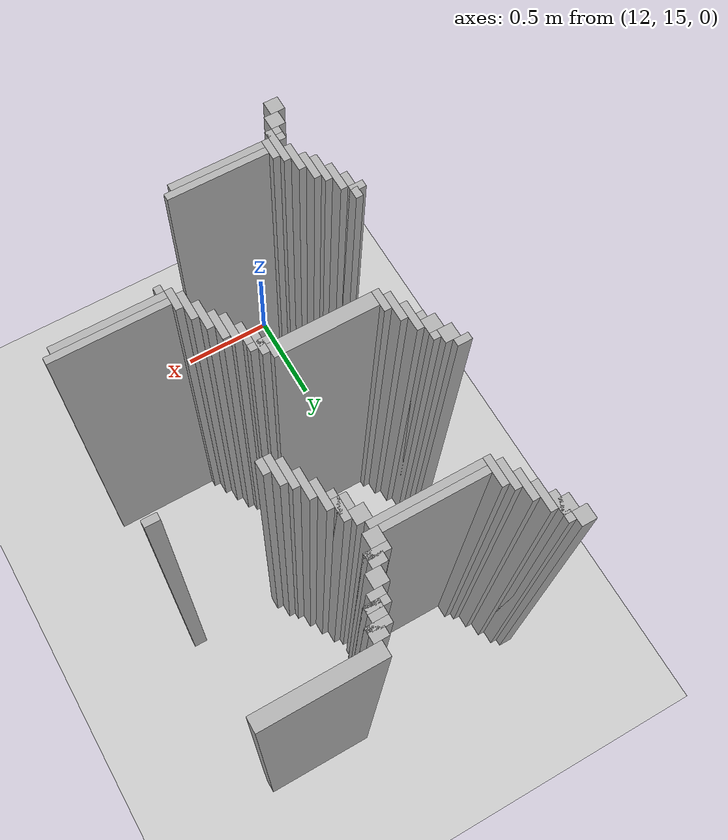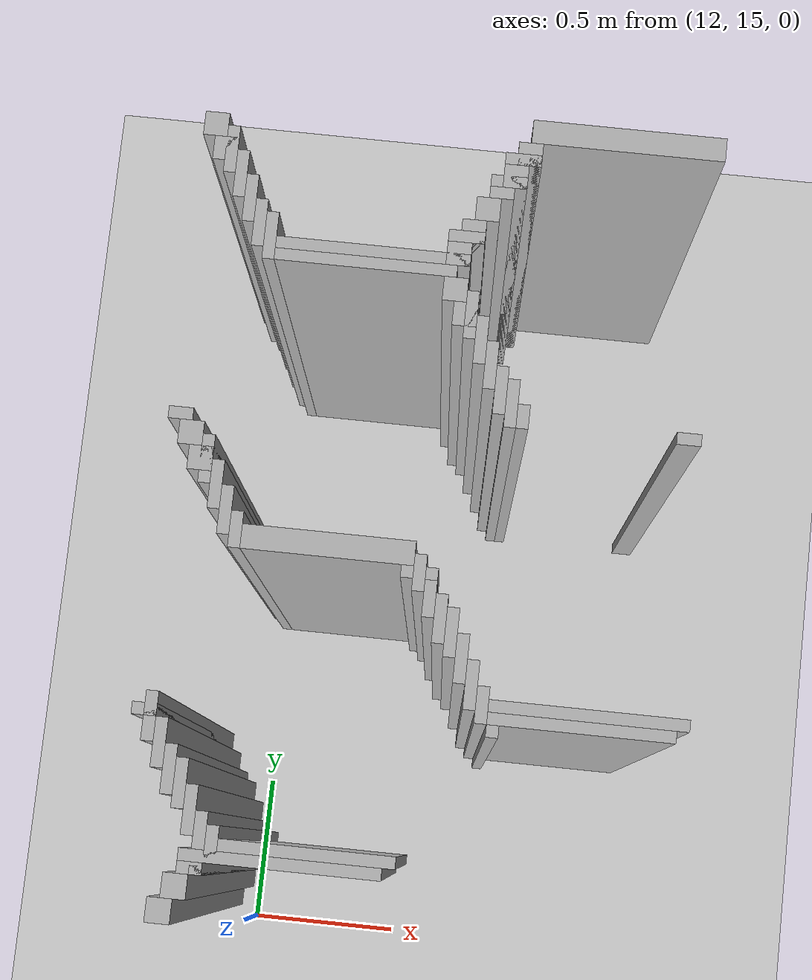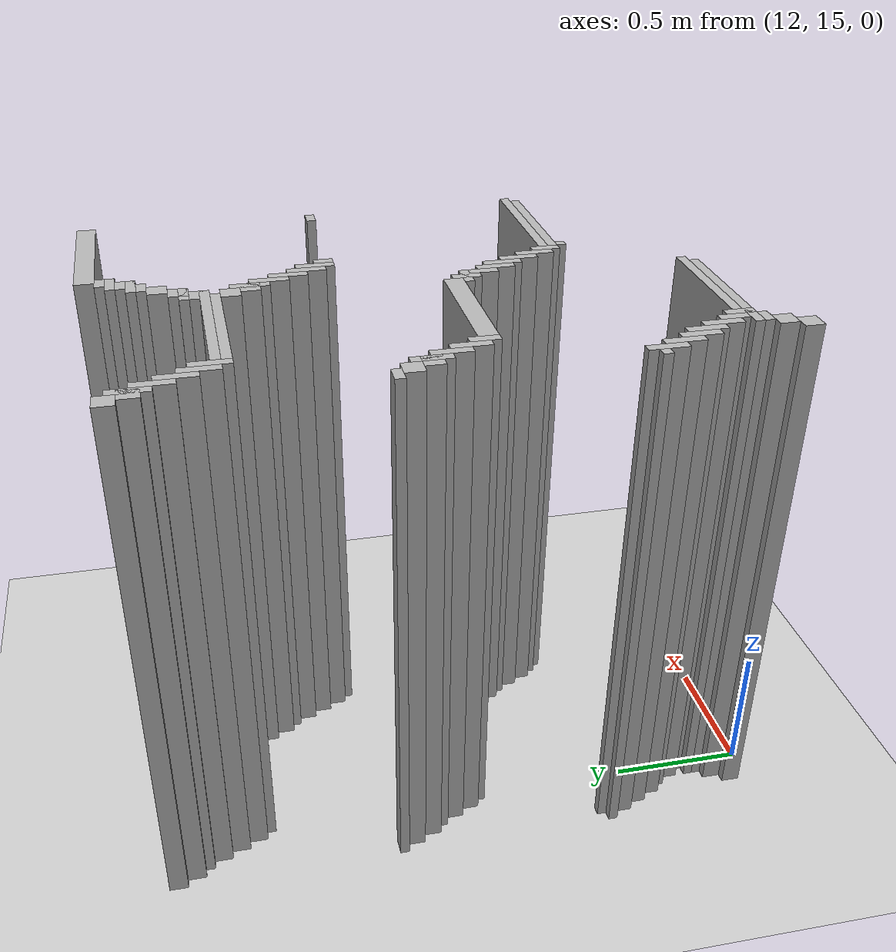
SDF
<sdf version="1.6">
 <world name="slam_world">
  <model name="ground_plane">
   <static>true</static>
   <link name="link">
    <collision name="collision">
     <geometry><plane><normal>0 0 1</normal><size>100 100</size></plane></geometry>
    </collision>
    <visual name="visual">
     <geometry><plane><normal>0 0 1</normal><size>100 100</size></plane></geometry>
     <material>
      <ambient>0.8 0.8 0.8 1</ambient>
      <diffuse>0.8 0.8 0.8 1</diffuse>
      <specular>0.8 0.8 0.8 1</specular>
     </material>
    </visual>
   </link>
  </model>
  <model name="wall_9">
   <static>true</static>
   <pose>12.981438515081207 17.366589327146173 1.0 0 0 0</pose>
   <link name="link">
    <collision name="collision">
     <geometry><box><size>0.5568445475638051 0.06960556844547564 2.0</size></box></geometry>
    </collision>
    <visual name="visual">
     <geometry><box><size>0.5568445475638051 0.06960556844547564 2.0</size></box></geometry>
     <material><ambient>0.5 0.5 0.5 1</ambient><diffuse>0.7 0.7 0.7 1</diffuse></material>
    </visual>
   </link>
  </model>
  <model name="wall_26">
   <static>true</static>
   <pose>11.79814385150812 17.296983758700694 1.0 0 0 0</pose>
   <link name="link">
    <collision name="collision">
     <geometry><box><size>0.06960556844547564 0.06960556844547564 2.0</size></box></geometry>
    </collision>
    <visual name="visual">
     <geometry><box><size>0.06960556844547564 0.06960556844547564 2.0</size></box></geometry>
     <material><ambient>0.5 0.5 0.5 1</ambient><diffuse>0.7 0.7 0.7 1</diffuse></material>
    </visual>
   </link>
  </model>
  <model name="wall_27">
   <static>true</static>
   <pose>12.703016241299304 17.296983758700694 1.0 0 0 0</pose>
   <link name="link">
    <collision name="collision">
     <geometry><box><size>0.06960556844547564 0.06960556844547564 2.0</size></box></geometry>
    </collision>
    <visual name="visual">
     <geometry><box><size>0.06960556844547564 0.06960556844547564 2.0</size></box></geometry>
     <material><ambient>0.5 0.5 0.5 1</ambient><diffuse>0.7 0.7 0.7 1</diffuse></material>
    </visual>
   </link>
  </model>
  <model name="wall_46">
   <static>true</static>
   <pose>11.850348027842227 17.22737819025522 1.0 0 0 0</pose>
   <link name="link">
    <collision name="collision">
     <geometry><box><size>0.03480278422273782 0.13921113689095127 2.0</size></box></geometry>
    </collision>
    <visual name="visual">
     <geometry><box><size>0.03480278422273782 0.13921113689095127 2.0</size></box></geometry>
     <material><ambient>0.5 0.5 0.5 1</ambient><diffuse>0.7 0.7 0.7 1</diffuse></material>
    </visual>
   </link>
  </model>
  <model name="wall_47">
   <static>true</static>
   <pose>12.685614849187935 17.279582366589327 1.0 0 0 0</pose>
   <link name="link">
    <collision name="collision">
     <geometry><box><size>0.10440835266821345 0.03480278422273782 2.0</size></box></geometry>
    </collision>
    <visual name="visual">
     <geometry><box><size>0.10440835266821345 0.03480278422273782 2.0</size></box></geometry>
     <material><ambient>0.5 0.5 0.5 1</ambient><diffuse>0.7 0.7 0.7 1</diffuse></material>
    </visual>
   </link>
  </model>
  <model name="wall_66">
   <static>true</static>
   <pose>11.832946635730858 17.22737819025522 1.0 0 0 0</pose>
   <link name="link">
    <collision name="collision">
     <geometry><box><size>0.06960556844547564 0.06960556844547564 2.0</size></box></geometry>
    </collision>
    <visual name="visual">
     <geometry><box><size>0.06960556844547564 0.06960556844547564 2.0</size></box></geometry>
     <material><ambient>0.5 0.5 0.5 1</ambient><diffuse>0.7 0.7 0.7 1</diffuse></material>
    </visual>
   </link>
  </model>
  <model name="wall_67">
   <static>true</static>
   <pose>12.668213457076565 17.22737819025522 1.0 0 0 0</pose>
   <link name="link">
    <collision name="collision">
     <geometry><box><size>0.06960556844547564 0.06960556844547564 2.0</size></box></geometry>
    </collision>
    <visual name="visual">
     <geometry><box><size>0.06960556844547564 0.06960556844547564 2.0</size></box></geometry>
     <material><ambient>0.5 0.5 0.5 1</ambient><diffuse>0.7 0.7 0.7 1</diffuse></material>
    </visual>
   </link>
  </model>
  <model name="wall_86">
   <static>true</static>
   <pose>11.885150812064964 17.157772621809745 1.0 0 0 0</pose>
   <link name="link">
    <collision name="collision">
     <geometry><box><size>0.03480278422273782 0.13921113689095127 2.0</size></box></geometry>
    </collision>
    <visual name="visual">
     <geometry><box><size>0.03480278422273782 0.13921113689095127 2.0</size></box></geometry>
     <material><ambient>0.5 0.5 0.5 1</ambient><diffuse>0.7 0.7 0.7 1</diffuse></material>
    </visual>
   </link>
  </model>
  <model name="wall_87">
   <static>true</static>
   <pose>12.650812064965196 17.209976798143853 1.0 0 0 0</pose>
   <link name="link">
    <collision name="collision">
     <geometry><box><size>0.10440835266821345 0.03480278422273782 2.0</size></box></geometry>
    </collision>
    <visual name="visual">
     <geometry><box><size>0.10440835266821345 0.03480278422273782 2.0</size></box></geometry>
     <material><ambient>0.5 0.5 0.5 1</ambient><diffuse>0.7 0.7 0.7 1</diffuse></material>
    </visual>
   </link>
  </model>
  <model name="wall_99">
   <static>true</static>
   <pose>12.633410672853827 17.17517401392111 1.0 0 0 0</pose>
   <link name="link">
    <collision name="collision">
     <geometry><box><size>0.06960556844547564 0.03480278422273782 2.0</size></box></geometry>
    </collision>
    <visual name="visual">
     <geometry><box><size>0.06960556844547564 0.03480278422273782 2.0</size></box></geometry>
     <material><ambient>0.5 0.5 0.5 1</ambient><diffuse>0.7 0.7 0.7 1</diffuse></material>
    </visual>
   </link>
  </model>
  <model name="wall_116">
   <static>true</static>
   <pose>11.919953596287703 17.08816705336427 1.0 0 0 0</pose>
   <link name="link">
    <collision name="collision">
     <geometry><box><size>0.03480278422273782 0.13921113689095127 2.0</size></box></geometry>
    </collision>
    <visual name="visual">
     <geometry><box><size>0.03480278422273782 0.13921113689095127 2.0</size></box></geometry>
     <material><ambient>0.5 0.5 0.5 1</ambient><diffuse>0.7 0.7 0.7 1</diffuse></material>
    </visual>
   </link>
  </model>
  <model name="wall_117">
   <static>true</static>
   <pose>12.59860788863109 17.122969837587007 1.0 0 0 0</pose>
   <link name="link">
    <collision name="collision">
     <geometry><box><size>0.06960556844547564 0.06960556844547564 2.0</size></box></geometry>
    </collision>
    <visual name="visual">
     <geometry><box><size>0.06960556844547564 0.06960556844547564 2.0</size></box></geometry>
     <material><ambient>0.5 0.5 0.5 1</ambient><diffuse>0.7 0.7 0.7 1</diffuse></material>
    </visual>
   </link>
  </model>
  <model name="wall_136">
   <static>true</static>
   <pose>11.95475638051044 17.01856148491879 1.0 0 0 0</pose>
   <link name="link">
    <collision name="collision">
     <geometry><box><size>0.03480278422273782 0.13921113689095127 2.0</size></box></geometry>
    </collision>
    <visual name="visual">
     <geometry><box><size>0.03480278422273782 0.13921113689095127 2.0</size></box></geometry>
     <material><ambient>0.5 0.5 0.5 1</ambient><diffuse>0.7 0.7 0.7 1</diffuse></material>
    </visual>
   </link>
  </model>
  <model name="wall_137">
   <static>true</static>
   <pose>12.563805104408353 17.053364269141532 1.0 0 0 0</pose>
   <link name="link">
    <collision name="collision">
     <geometry><box><size>0.06960556844547564 0.06960556844547564 2.0</size></box></geometry>
    </collision>
    <visual name="visual">
     <geometry><box><size>0.06960556844547564 0.06960556844547564 2.0</size></box></geometry>
     <material><ambient>0.5 0.5 0.5 1</ambient><diffuse>0.7 0.7 0.7 1</diffuse></material>
    </visual>
   </link>
  </model>
  <model name="wall_156">
   <static>true</static>
   <pose>11.989559164733178 16.983758700696054 1.0 0 0 0</pose>
   <link name="link">
    <collision name="collision">
     <geometry><box><size>0.03480278422273782 0.13921113689095127 2.0</size></box></geometry>
    </collision>
    <visual name="visual">
     <geometry><box><size>0.03480278422273782 0.13921113689095127 2.0</size></box></geometry>
     <material><ambient>0.5 0.5 0.5 1</ambient><diffuse>0.7 0.7 0.7 1</diffuse></material>
    </visual>
   </link>
  </model>
  <model name="wall_157">
   <static>true</static>
   <pose>12.546403712296984 17.035962877030162 1.0 0 0 0</pose>
   <link name="link">
    <collision name="collision">
     <geometry><box><size>0.10440835266821345 0.03480278422273782 2.0</size></box></geometry>
    </collision>
    <visual name="visual">
     <geometry><box><size>0.10440835266821345 0.03480278422273782 2.0</size></box></geometry>
     <material><ambient>0.5 0.5 0.5 1</ambient><diffuse>0.7 0.7 0.7 1</diffuse></material>
    </visual>
   </link>
  </model>
  <model name="wall_169">
   <static>true</static>
   <pose>12.529002320185615 16.983758700696054 1.0 0 0 0</pose>
   <link name="link">
    <collision name="collision">
     <geometry><box><size>0.06960556844547564 0.06960556844547564 2.0</size></box></geometry>
    </collision>
    <visual name="visual">
     <geometry><box><size>0.06960556844547564 0.06960556844547564 2.0</size></box></geometry>
     <material><ambient>0.5 0.5 0.5 1</ambient><diffuse>0.7 0.7 0.7 1</diffuse></material>
    </visual>
   </link>
  </model>
  <model name="wall_179">
   <static>true</static>
   <pose>12.28538283062645 16.966357308584687 1.0 0 0 0</pose>
   <link name="link">
    <collision name="collision">
     <geometry><box><size>0.5568445475638051 0.03480278422273782 2.0</size></box></geometry>
    </collision>
    <visual name="visual">
     <geometry><box><size>0.5568445475638051 0.03480278422273782 2.0</size></box></geometry>
     <material><ambient>0.5 0.5 0.5 1</ambient><diffuse>0.7 0.7 0.7 1</diffuse></material>
    </visual>
   </link>
  </model>
  <model name="wall_190">
   <static>true</static>
   <pose>12.267981438515081 16.93155452436195 1.0 0 0 0</pose>
   <link name="link">
    <collision name="collision">
     <geometry><box><size>0.5220417633410672 0.03480278422273782 2.0</size></box></geometry>
    </collision>
    <visual name="visual">
     <geometry><box><size>0.5220417633410672 0.03480278422273782 2.0</size></box></geometry>
     <material><ambient>0.5 0.5 0.5 1</ambient><diffuse>0.7 0.7 0.7 1</diffuse></material>
    </visual>
   </link>
  </model>
  <model name="wall_199">
   <static>true</static>
   <pose>12.529002320185615 16.87935034802784 1.0 0 0 0</pose>
   <link name="link">
    <collision name="collision">
     <geometry><box><size>0.06960556844547564 0.06960556844547564 2.0</size></box></geometry>
    </collision>
    <visual name="visual">
     <geometry><box><size>0.06960556844547564 0.06960556844547564 2.0</size></box></geometry>
     <material><ambient>0.5 0.5 0.5 1</ambient><diffuse>0.7 0.7 0.7 1</diffuse></material>
    </visual>
   </link>
  </model>
  <model name="wall_209">
   <static>true</static>
   <pose>12.581206496519721 16.809744779582367 1.0 0 0 0</pose>
   <link name="link">
    <collision name="collision">
     <geometry><box><size>0.03480278422273782 0.13921113689095127 2.0</size></box></geometry>
    </collision>
    <visual name="visual">
     <geometry><box><size>0.03480278422273782 0.13921113689095127 2.0</size></box></geometry>
     <material><ambient>0.5 0.5 0.5 1</ambient><diffuse>0.7 0.7 0.7 1</diffuse></material>
    </visual>
   </link>
  </model>
  <model name="wall_219">
   <static>true</static>
   <pose>12.563805104408353 16.809744779582367 1.0 0 0 0</pose>
   <link name="link">
    <collision name="collision">
     <geometry><box><size>0.06960556844547564 0.06960556844547564 2.0</size></box></geometry>
    </collision>
    <visual name="visual">
     <geometry><box><size>0.06960556844547564 0.06960556844547564 2.0</size></box></geometry>
     <material><ambient>0.5 0.5 0.5 1</ambient><diffuse>0.7 0.7 0.7 1</diffuse></material>
    </visual>
   </link>
  </model>
  <model name="wall_229">
   <static>true</static>
   <pose>12.616009280742459 16.74013921113689 1.0 0 0 0</pose>
   <link name="link">
    <collision name="collision">
     <geometry><box><size>0.03480278422273782 0.13921113689095127 2.0</size></box></geometry>
    </collision>
    <visual name="visual">
     <geometry><box><size>0.03480278422273782 0.13921113689095127 2.0</size></box></geometry>
     <material><ambient>0.5 0.5 0.5 1</ambient><diffuse>0.7 0.7 0.7 1</diffuse></material>
    </visual>
   </link>
  </model>
  <model name="wall_245">
   <static>true</static>
   <pose>12.650812064965196 16.670533642691414 1.0 0 0 0</pose>
   <link name="link">
    <collision name="collision">
     <geometry><box><size>0.03480278422273782 0.13921113689095127 2.0</size></box></geometry>
    </collision>
    <visual name="visual">
     <geometry><box><size>0.03480278422273782 0.13921113689095127 2.0</size></box></geometry>
     <material><ambient>0.5 0.5 0.5 1</ambient><diffuse>0.7 0.7 0.7 1</diffuse></material>
    </visual>
   </link>
  </model>
  <model name="wall_255">
   <static>true</static>
   <pose>12.685614849187935 16.60092807424594 1.0 0 0 0</pose>
   <link name="link">
    <collision name="collision">
     <geometry><box><size>0.03480278422273782 0.13921113689095127 2.0</size></box></geometry>
    </collision>
    <visual name="visual">
     <geometry><box><size>0.03480278422273782 0.13921113689095127 2.0</size></box></geometry>
     <material><ambient>0.5 0.5 0.5 1</ambient><diffuse>0.7 0.7 0.7 1</diffuse></material>
    </visual>
   </link>
  </model>
  <model name="wall_265">
   <static>true</static>
   <pose>12.720417633410673 16.5661252900232 1.0 0 0 0</pose>
   <link name="link">
    <collision name="collision">
     <geometry><box><size>0.03480278422273782 0.13921113689095127 2.0</size></box></geometry>
    </collision>
    <visual name="visual">
     <geometry><box><size>0.03480278422273782 0.13921113689095127 2.0</size></box></geometry>
     <material><ambient>0.5 0.5 0.5 1</ambient><diffuse>0.7 0.7 0.7 1</diffuse></material>
    </visual>
   </link>
  </model>
  <model name="wall_284">
   <static>true</static>
   <pose>12.75522041763341 16.531322505800464 1.0 0 0 0</pose>
   <link name="link">
    <collision name="collision">
     <geometry><box><size>0.03480278422273782 0.06960556844547564 2.0</size></box></geometry>
    </collision>
    <visual name="visual">
     <geometry><box><size>0.03480278422273782 0.06960556844547564 2.0</size></box></geometry>
     <material><ambient>0.5 0.5 0.5 1</ambient><diffuse>0.7 0.7 0.7 1</diffuse></material>
    </visual>
   </link>
  </model>
  <model name="wall_291">
   <static>true</static>
   <pose>13.22505800464037 16.513921113689094 1.0 0 0 0</pose>
   <link name="link">
    <collision name="collision">
     <geometry><box><size>0.06960556844547564 0.03480278422273782 2.0</size></box></geometry>
    </collision>
    <visual name="visual">
     <geometry><box><size>0.06960556844547564 0.03480278422273782 2.0</size></box></geometry>
     <material><ambient>0.5 0.5 0.5 1</ambient><diffuse>0.7 0.7 0.7 1</diffuse></material>
    </visual>
   </link>
  </model>
  <model name="wall_313">
   <static>true</static>
   <pose>11.79814385150812 16.44431554524362 1.0 0 0 0</pose>
   <link name="link">
    <collision name="collision">
     <geometry><box><size>0.06960556844547564 0.03480278422273782 2.0</size></box></geometry>
    </collision>
    <visual name="visual">
     <geometry><box><size>0.06960556844547564 0.03480278422273782 2.0</size></box></geometry>
     <material><ambient>0.5 0.5 0.5 1</ambient><diffuse>0.7 0.7 0.7 1</diffuse></material>
    </visual>
   </link>
  </model>
  <model name="wall_326">
   <static>true</static>
   <pose>11.832946635730858 16.39211136890951 1.0 0 0 0</pose>
   <link name="link">
    <collision name="collision">
     <geometry><box><size>0.06960556844547564 0.06960556844547564 2.0</size></box></geometry>
    </collision>
    <visual name="visual">
     <geometry><box><size>0.06960556844547564 0.06960556844547564 2.0</size></box></geometry>
     <material><ambient>0.5 0.5 0.5 1</ambient><diffuse>0.7 0.7 0.7 1</diffuse></material>
    </visual>
   </link>
  </model>
  <model name="wall_339">
   <static>true</static>
   <pose>11.885150812064964 16.322505800464036 1.0 0 0 0</pose>
   <link name="link">
    <collision name="collision">
     <geometry><box><size>0.03480278422273782 0.13921113689095127 2.0</size></box></geometry>
    </collision>
    <visual name="visual">
     <geometry><box><size>0.03480278422273782 0.13921113689095127 2.0</size></box></geometry>
     <material><ambient>0.5 0.5 0.5 1</ambient><diffuse>0.7 0.7 0.7 1</diffuse></material>
    </visual>
   </link>
  </model>
  <model name="wall_352">
   <static>true</static>
   <pose>11.867749419953595 16.322505800464036 1.0 0 0 0</pose>
   <link name="link">
    <collision name="collision">
     <geometry><box><size>0.06960556844547564 0.06960556844547564 2.0</size></box></geometry>
    </collision>
    <visual name="visual">
     <geometry><box><size>0.06960556844547564 0.06960556844547564 2.0</size></box></geometry>
     <material><ambient>0.5 0.5 0.5 1</ambient><diffuse>0.7 0.7 0.7 1</diffuse></material>
    </visual>
   </link>
  </model>
  <model name="wall_365">
   <static>true</static>
   <pose>11.919953596287703 16.25290023201856 1.0 0 0 0</pose>
   <link name="link">
    <collision name="collision">
     <geometry><box><size>0.03480278422273782 0.13921113689095127 2.0</size></box></geometry>
    </collision>
    <visual name="visual">
     <geometry><box><size>0.03480278422273782 0.13921113689095127 2.0</size></box></geometry>
     <material><ambient>0.5 0.5 0.5 1</ambient><diffuse>0.7 0.7 0.7 1</diffuse></material>
    </visual>
   </link>
  </model>
  <model name="wall_383">
   <static>true</static>
   <pose>11.95475638051044 16.183294663573086 1.0 0 0 0</pose>
   <link name="link">
    <collision name="collision">
     <geometry><box><size>0.03480278422273782 0.13921113689095127 2.0</size></box></geometry>
    </collision>
    <visual name="visual">
     <geometry><box><size>0.03480278422273782 0.13921113689095127 2.0</size></box></geometry>
     <material><ambient>0.5 0.5 0.5 1</ambient><diffuse>0.7 0.7 0.7 1</diffuse></material>
    </visual>
   </link>
  </model>
  <model name="wall_401">
   <static>true</static>
   <pose>11.989559164733178 16.13109048723898 1.0 0 0 0</pose>
   <link name="link">
    <collision name="collision">
     <geometry><box><size>0.03480278422273782 0.10440835266821345 2.0</size></box></geometry>
    </collision>
    <visual name="visual">
     <geometry><box><size>0.03480278422273782 0.10440835266821345 2.0</size></box></geometry>
     <material><ambient>0.5 0.5 0.5 1</ambient><diffuse>0.7 0.7 0.7 1</diffuse></material>
    </visual>
   </link>
  </model>
  <model name="wall_413">
   <static>true</static>
   <pose>12.250580046403712 16.113689095127608 1.0 0 0 0</pose>
   <link name="link">
    <collision name="collision">
     <geometry><box><size>0.4872389791183295 0.06960556844547564 2.0</size></box></geometry>
    </collision>
    <visual name="visual">
     <geometry><box><size>0.4872389791183295 0.06960556844547564 2.0</size></box></geometry>
     <material><ambient>0.5 0.5 0.5 1</ambient><diffuse>0.7 0.7 0.7 1</diffuse></material>
    </visual>
   </link>
  </model>
  <model name="wall_426">
   <static>true</static>
   <pose>12.511600928074245 16.061484918793504 1.0 0 0 0</pose>
   <link name="link">
    <collision name="collision">
     <geometry><box><size>0.03480278422273782 0.10440835266821345 2.0</size></box></geometry>
    </collision>
    <visual name="visual">
     <geometry><box><size>0.03480278422273782 0.10440835266821345 2.0</size></box></geometry>
     <material><ambient>0.5 0.5 0.5 1</ambient><diffuse>0.7 0.7 0.7 1</diffuse></material>
    </visual>
   </link>
  </model>
  <model name="wall_441">
   <static>true</static>
   <pose>12.511600928074245 16.061484918793504 1.0 0 0 0</pose>
   <link name="link">
    <collision name="collision">
     <geometry><box><size>0.10440835266821345 0.03480278422273782 2.0</size></box></geometry>
    </collision>
    <visual name="visual">
     <geometry><box><size>0.10440835266821345 0.03480278422273782 2.0</size></box></geometry>
     <material><ambient>0.5 0.5 0.5 1</ambient><diffuse>0.7 0.7 0.7 1</diffuse></material>
    </visual>
   </link>
  </model>
  <model name="wall_456">
   <static>true</static>
   <pose>12.546403712296984 15.991879350348027 1.0 0 0 0</pose>
   <link name="link">
    <collision name="collision">
     <geometry><box><size>0.03480278422273782 0.10440835266821345 2.0</size></box></geometry>
    </collision>
    <visual name="visual">
     <geometry><box><size>0.03480278422273782 0.10440835266821345 2.0</size></box></geometry>
     <material><ambient>0.5 0.5 0.5 1</ambient><diffuse>0.7 0.7 0.7 1</diffuse></material>
    </visual>
   </link>
  </model>
  <model name="wall_471">
   <static>true</static>
   <pose>12.581206496519721 15.93967517401392 1.0 0 0 0</pose>
   <link name="link">
    <collision name="collision">
     <geometry><box><size>0.03480278422273782 0.13921113689095127 2.0</size></box></geometry>
    </collision>
    <visual name="visual">
     <geometry><box><size>0.03480278422273782 0.13921113689095127 2.0</size></box></geometry>
     <material><ambient>0.5 0.5 0.5 1</ambient><diffuse>0.7 0.7 0.7 1</diffuse></material>
    </visual>
   </link>
  </model>
  <model name="wall_486">
   <static>true</static>
   <pose>12.616009280742459 15.904872389791183 1.0 0 0 0</pose>
   <link name="link">
    <collision name="collision">
     <geometry><box><size>0.03480278422273782 0.13921113689095127 2.0</size></box></geometry>
    </collision>
    <visual name="visual">
     <geometry><box><size>0.03480278422273782 0.13921113689095127 2.0</size></box></geometry>
     <material><ambient>0.5 0.5 0.5 1</ambient><diffuse>0.7 0.7 0.7 1</diffuse></material>
    </visual>
   </link>
  </model>
  <model name="wall_510">
   <static>true</static>
   <pose>12.650812064965196 15.835266821345707 1.0 0 0 0</pose>
   <link name="link">
    <collision name="collision">
     <geometry><box><size>0.03480278422273782 0.13921113689095127 2.0</size></box></geometry>
    </collision>
    <visual name="visual">
     <geometry><box><size>0.03480278422273782 0.13921113689095127 2.0</size></box></geometry>
     <material><ambient>0.5 0.5 0.5 1</ambient><diffuse>0.7 0.7 0.7 1</diffuse></material>
    </visual>
   </link>
  </model>
  <model name="wall_533">
   <static>true</static>
   <pose>12.685614849187935 15.765661252900232 1.0 0 0 0</pose>
   <link name="link">
    <collision name="collision">
     <geometry><box><size>0.03480278422273782 0.13921113689095127 2.0</size></box></geometry>
    </collision>
    <visual name="visual">
     <geometry><box><size>0.03480278422273782 0.13921113689095127 2.0</size></box></geometry>
     <material><ambient>0.5 0.5 0.5 1</ambient><diffuse>0.7 0.7 0.7 1</diffuse></material>
    </visual>
   </link>
  </model>
  <model name="wall_548">
   <static>true</static>
   <pose>12.720417633410673 15.713457076566124 1.0 0 0 0</pose>
   <link name="link">
    <collision name="collision">
     <geometry><box><size>0.03480278422273782 0.10440835266821345 2.0</size></box></geometry>
    </collision>
    <visual name="visual">
     <geometry><box><size>0.03480278422273782 0.10440835266821345 2.0</size></box></geometry>
     <material><ambient>0.5 0.5 0.5 1</ambient><diffuse>0.7 0.7 0.7 1</diffuse></material>
    </visual>
   </link>
  </model>
  <model name="wall_562">
   <static>true</static>
   <pose>13.016241299303944 15.713457076566124 1.0 0 0 0</pose>
   <link name="link">
    <collision name="collision">
     <geometry><box><size>0.5568445475638051 0.03480278422273782 2.0</size></box></geometry>
    </collision>
    <visual name="visual">
     <geometry><box><size>0.5568445475638051 0.03480278422273782 2.0</size></box></geometry>
     <material><ambient>0.5 0.5 0.5 1</ambient><diffuse>0.7 0.7 0.7 1</diffuse></material>
    </visual>
   </link>
  </model>
  <model name="wall_573">
   <static>true</static>
   <pose>12.998839907192576 15.678654292343387 1.0 0 0 0</pose>
   <link name="link">
    <collision name="collision">
     <geometry><box><size>0.5220417633410672 0.03480278422273782 2.0</size></box></geometry>
    </collision>
    <visual name="visual">
     <geometry><box><size>0.5220417633410672 0.03480278422273782 2.0</size></box></geometry>
     <material><ambient>0.5 0.5 0.5 1</ambient><diffuse>0.7 0.7 0.7 1</diffuse></material>
    </visual>
   </link>
  </model>
  <model name="wall_590">
   <static>true</static>
   <pose>11.81554524361949 15.591647331786543 1.0 0 0 0</pose>
   <link name="link">
    <collision name="collision">
     <geometry><box><size>0.03480278422273782 0.13921113689095127 2.0</size></box></geometry>
    </collision>
    <visual name="visual">
     <geometry><box><size>0.03480278422273782 0.13921113689095127 2.0</size></box></geometry>
     <material><ambient>0.5 0.5 0.5 1</ambient><diffuse>0.7 0.7 0.7 1</diffuse></material>
    </visual>
   </link>
  </model>
  <model name="wall_591">
   <static>true</static>
   <pose>12.75522041763341 15.64385150812065 1.0 0 0 0</pose>
   <link name="link">
    <collision name="collision">
     <geometry><box><size>0.03480278422273782 0.03480278422273782 2.0</size></box></geometry>
    </collision>
    <visual name="visual">
     <geometry><box><size>0.03480278422273782 0.03480278422273782 2.0</size></box></geometry>
     <material><ambient>0.5 0.5 0.5 1</ambient><diffuse>0.7 0.7 0.7 1</diffuse></material>
    </visual>
   </link>
  </model>
  <model name="wall_607">
   <static>true</static>
   <pose>11.79814385150812 15.609048723897912 1.0 0 0 0</pose>
   <link name="link">
    <collision name="collision">
     <geometry><box><size>0.06960556844547564 0.03480278422273782 2.0</size></box></geometry>
    </collision>
    <visual name="visual">
     <geometry><box><size>0.06960556844547564 0.03480278422273782 2.0</size></box></geometry>
     <material><ambient>0.5 0.5 0.5 1</ambient><diffuse>0.7 0.7 0.7 1</diffuse></material>
    </visual>
   </link>
  </model>
  <model name="wall_623">
   <static>true</static>
   <pose>11.850348027842227 15.522041763341067 1.0 0 0 0</pose>
   <link name="link">
    <collision name="collision">
     <geometry><box><size>0.03480278422273782 0.13921113689095127 2.0</size></box></geometry>
    </collision>
    <visual name="visual">
     <geometry><box><size>0.03480278422273782 0.13921113689095127 2.0</size></box></geometry>
     <material><ambient>0.5 0.5 0.5 1</ambient><diffuse>0.7 0.7 0.7 1</diffuse></material>
    </visual>
   </link>
  </model>
  <model name="wall_639">
   <static>true</static>
   <pose>11.885150812064964 15.452436194895592 1.0 0 0 0</pose>
   <link name="link">
    <collision name="collision">
     <geometry><box><size>0.03480278422273782 0.13921113689095127 2.0</size></box></geometry>
    </collision>
    <visual name="visual">
     <geometry><box><size>0.03480278422273782 0.13921113689095127 2.0</size></box></geometry>
     <material><ambient>0.5 0.5 0.5 1</ambient><diffuse>0.7 0.7 0.7 1</diffuse></material>
    </visual>
   </link>
  </model>
  <model name="wall_655">
   <static>true</static>
   <pose>11.919953596287703 15.417633410672853 1.0 0 0 0</pose>
   <link name="link">
    <collision name="collision">
     <geometry><box><size>0.03480278422273782 0.13921113689095127 2.0</size></box></geometry>
    </collision>
    <visual name="visual">
     <geometry><box><size>0.03480278422273782 0.13921113689095127 2.0</size></box></geometry>
     <material><ambient>0.5 0.5 0.5 1</ambient><diffuse>0.7 0.7 0.7 1</diffuse></material>
    </visual>
   </link>
  </model>
  <model name="wall_682">
   <static>true</static>
   <pose>11.95475638051044 15.348027842227378 1.0 0 0 0</pose>
   <link name="link">
    <collision name="collision">
     <geometry><box><size>0.03480278422273782 0.13921113689095127 2.0</size></box></geometry>
    </collision>
    <visual name="visual">
     <geometry><box><size>0.03480278422273782 0.13921113689095127 2.0</size></box></geometry>
     <material><ambient>0.5 0.5 0.5 1</ambient><diffuse>0.7 0.7 0.7 1</diffuse></material>
    </visual>
   </link>
  </model>
  <model name="wall_704">
   <static>true</static>
   <pose>11.989559164733178 15.261020881670532 1.0 0 0 0</pose>
   <link name="link">
    <collision name="collision">
     <geometry><box><size>0.03480278422273782 0.17401392111368907 2.0</size></box></geometry>
    </collision>
    <visual name="visual">
     <geometry><box><size>0.03480278422273782 0.17401392111368907 2.0</size></box></geometry>
     <material><ambient>0.5 0.5 0.5 1</ambient><diffuse>0.7 0.7 0.7 1</diffuse></material>
    </visual>
   </link>
  </model>
  <model name="wall_720">
   <static>true</static>
   <pose>12.024361948955915 15.261020881670532 1.0 0 0 0</pose>
   <link name="link">
    <collision name="collision">
     <geometry><box><size>0.03480278422273782 0.10440835266821345 2.0</size></box></geometry>
    </collision>
    <visual name="visual">
     <geometry><box><size>0.03480278422273782 0.10440835266821345 2.0</size></box></geometry>
     <material><ambient>0.5 0.5 0.5 1</ambient><diffuse>0.7 0.7 0.7 1</diffuse></material>
    </visual>
   </link>
  </model>
  <model name="wall_731">
   <static>true</static>
   <pose>12.28538283062645 15.261020881670532 1.0 0 0 0</pose>
   <link name="link">
    <collision name="collision">
     <geometry><box><size>0.4872389791183295 0.03480278422273782 2.0</size></box></geometry>
    </collision>
    <visual name="visual">
     <geometry><box><size>0.4872389791183295 0.03480278422273782 2.0</size></box></geometry>
     <material><ambient>0.5 0.5 0.5 1</ambient><diffuse>0.7 0.7 0.7 1</diffuse></material>
    </visual>
   </link>
  </model>
  <model name="wall_742">
   <static>true</static>
   <pose>12.215777262180975 15.226218097447795 1.0 0 0 0</pose>
   <link name="link">
    <collision name="collision">
     <geometry><box><size>0.5568445475638051 0.03480278422273782 2.0</size></box></geometry>
    </collision>
    <visual name="visual">
     <geometry><box><size>0.5568445475638051 0.03480278422273782 2.0</size></box></geometry>
     <material><ambient>0.5 0.5 0.5 1</ambient><diffuse>0.7 0.7 0.7 1</diffuse></material>
    </visual>
   </link>
  </model>
  <model name="wall_755">
   <static>true</static>
   <pose>11.97215777262181 15.191415313225058 1.0 0 0 0</pose>
   <link name="link">
    <collision name="collision">
     <geometry><box><size>0.06960556844547564 0.03480278422273782 2.0</size></box></geometry>
    </collision>
    <visual name="visual">
     <geometry><box><size>0.06960556844547564 0.03480278422273782 2.0</size></box></geometry>
     <material><ambient>0.5 0.5 0.5 1</ambient><diffuse>0.7 0.7 0.7 1</diffuse></material>
    </visual>
   </link>
  </model>
  <model name="wall_769">
   <static>true</static>
   <pose>11.937354988399072 15.139211136890951 1.0 0 0 0</pose>
   <link name="link">
    <collision name="collision">
     <geometry><box><size>0.06960556844547564 0.06960556844547564 2.0</size></box></geometry>
    </collision>
    <visual name="visual">
     <geometry><box><size>0.06960556844547564 0.06960556844547564 2.0</size></box></geometry>
     <material><ambient>0.5 0.5 0.5 1</ambient><diffuse>0.7 0.7 0.7 1</diffuse></material>
    </visual>
   </link>
  </model>
  <model name="wall_783">
   <static>true</static>
   <pose>11.902552204176333 15.069605568445475 1.0 0 0 0</pose>
   <link name="link">
    <collision name="collision">
     <geometry><box><size>0.06960556844547564 0.06960556844547564 2.0</size></box></geometry>
    </collision>
    <visual name="visual">
     <geometry><box><size>0.06960556844547564 0.06960556844547564 2.0</size></box></geometry>
     <material><ambient>0.5 0.5 0.5 1</ambient><diffuse>0.7 0.7 0.7 1</diffuse></material>
    </visual>
   </link>
  </model>
 </world>
</sdf>
